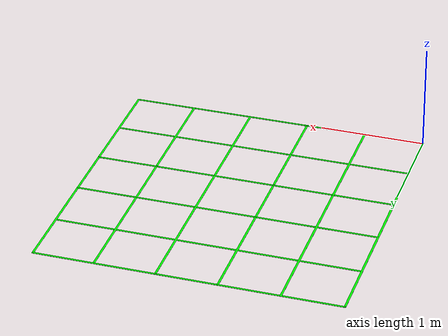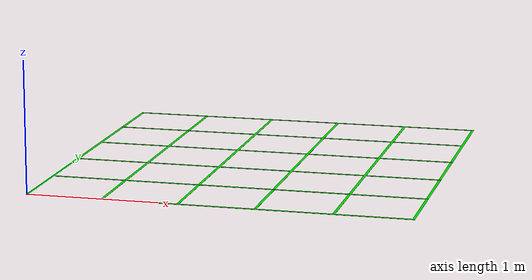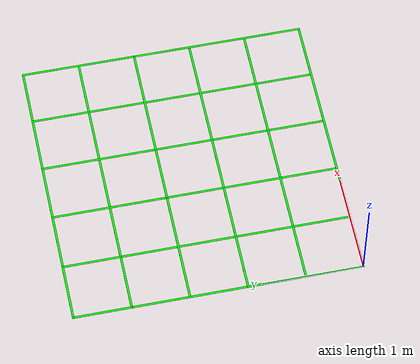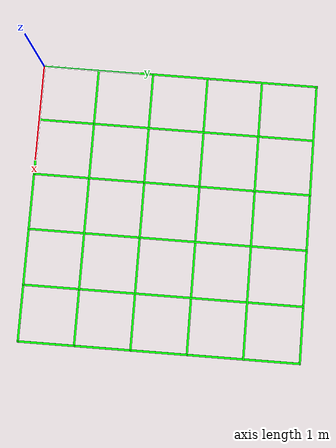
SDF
<sdf version="1.5">
 <world name="default">
  <include><uri>model://5x5Grid</uri><pose>1.4325 1.4325 0 0 0 0</pose></include>
  <include><uri>model://sun</uri></include>
  <scene>
   <ambient>0.8 0.8 0.8 1</ambient>
   <background>0.8 0.9 1 1</background>
   <shadows>false</shadows>
   <grid>false</grid>
   <origin_visual>false</origin_visual>
  </scene>
  <physics name="default_physics" default="0" type="ode">
   <gravity>0 0 -9.8066</gravity>
   <ode>
    <solver>
     <type>quick</type>
     <iters>10</iters>
     <sor>1.3</sor>
     <use_dynamic_moi_rescaling>0</use_dynamic_moi_rescaling>
    </solver>
    <constraints>
     <cfm>0</cfm>
     <erp>0.2</erp>
     <contact_max_correcting_vel>100</contact_max_correcting_vel>
     <contact_surface_layer>0.001</contact_surface_layer>
    </constraints>
   </ode>
   <max_step_size>0.004</max_step_size>
   <real_time_factor>1</real_time_factor>
   <real_time_update_rate>250</real_time_update_rate>
   <magnetic_field>6.0e-6 2.3e-5 -4.2e-5</magnetic_field>
  </physics>
 </world>
</sdf>

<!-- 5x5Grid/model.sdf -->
<sdf version='1.7'>
  <model name='5x5Grid'>
    <pose>1.4325 1.4325 0 0 -0 0</pose>
    <link name='Wall_0'>
      <collision name='Wall_0_Collision'>
        <geometry>
          <box>
            <size>2.885 0.02 0.001</size>
          </box>
        </geometry>
        <pose>0 0 0.0005 0 -0 0</pose>
      </collision>
      <visual name='Wall_0_Visual'>
        <pose>0 0 0.0005 0 -0 0</pose>
        <geometry>
          <box>
            <size>2.885 0.02 0.001</size>
          </box>
        </geometry>
        <material>
          <script>
            <uri>file://media/materials/scripts/gazebo.material</uri>
            <name>Gazebo/Grey</name>
          </script>
          <ambient>0 1 0 1</ambient>
        </material>
        <meta>
          <layer>0</layer>
        </meta>
      </visual>
      <pose>-1.4325 0 0 0 -0 -1.5708</pose>
    </link>
    <link name='Wall_1'>
      <collision name='Wall_1_Collision'>
        <geometry>
          <box>
            <size>2.885 0.02 0.001</size>
          </box>
        </geometry>
        <pose>0 0 0.0005 0 -0 0</pose>
      </collision>
      <visual name='Wall_1_Visual'>
        <pose>0 0 0.0005 0 -0 0</pose>
        <geometry>
          <box>
            <size>2.885 0.02 0.001</size>
          </box>
        </geometry>
        <material>
          <script>
            <uri>file://media/materials/scripts/gazebo.material</uri>
            <name>Gazebo/Grey</name>
          </script>
          <ambient>0 1 0 1</ambient>
        </material>
        <meta>
          <layer>0</layer>
        </meta>
      </visual>
      <pose>0 -1.4325 0 0 -0 0</pose>
    </link>
    <link name='Wall_11'>
      <collision name='Wall_11_Collision'>
        <geometry>
          <box>
            <size>2.885 0.02 0.001</size>
          </box>
        </geometry>
        <pose>0 0 0.0005 0 -0 0</pose>
      </collision>
      <visual name='Wall_11_Visual'>
        <pose>0 0 0.0005 0 -0 0</pose>
        <geometry>
          <box>
            <size>2.885 0.02 0.001</size>
          </box>
        </geometry>
        <material>
          <script>
            <uri>file://media/materials/scripts/gazebo.material</uri>
            <name>Gazebo/Grey</name>
          </script>
          <ambient>0 1 0 1</ambient>
        </material>
        <meta>
          <layer>0</layer>
        </meta>
      </visual>
      <pose>0 0.8595 0 0 -0 0</pose>
    </link>
    <link name='Wall_13'>
      <collision name='Wall_13_Collision'>
        <geometry>
          <box>
            <size>2.885 0.02 0.001</size>
          </box>
        </geometry>
        <pose>0 0 0.0005 0 -0 0</pose>
      </collision>
      <visual name='Wall_13_Visual'>
        <pose>0 0 0.0005 0 -0 0</pose>
        <geometry>
          <box>
            <size>2.885 0.02 0.001</size>
          </box>
        </geometry>
        <material>
          <script>
            <uri>file://media/materials/scripts/gazebo.material</uri>
            <name>Gazebo/Grey</name>
          </script>
          <ambient>0 1 0 1</ambient>
        </material>
        <meta>
          <layer>0</layer>
        </meta>
      </visual>
      <pose>-0.8595 0 0 0 -0 -1.5708</pose>
    </link>
    <link name='Wall_17'>
      <collision name='Wall_17_Collision'>
        <geometry>
          <box>
            <size>2.885 0.02 0.001</size>
          </box>
        </geometry>
        <pose>0 0 0.0005 0 -0 0</pose>
      </collision>
      <visual name='Wall_17_Visual'>
        <pose>0 0 0.0005 0 -0 0</pose>
        <geometry>
          <box>
            <size>2.885 0.02 0.001</size>
          </box>
        </geometry>
        <material>
          <script>
            <uri>file://media/materials/scripts/gazebo.material</uri>
            <name>Gazebo/Grey</name>
          </script>
          <ambient>0 1 0 1</ambient>
        </material>
        <meta>
          <layer>0</layer>
        </meta>
      </visual>
      <pose>-0.2865 0 0 0 -0 -1.5708</pose>
    </link>
    <link name='Wall_19'>
      <collision name='Wall_19_Collision'>
        <geometry>
          <box>
            <size>2.885 0.02 0.001</size>
          </box>
        </geometry>
        <pose>0 0 0.0005 0 -0 0</pose>
      </collision>
      <visual name='Wall_19_Visual'>
        <pose>0 0 0.0005 0 -0 0</pose>
        <geometry>
          <box>
            <size>2.885 0.02 0.001</size>
          </box>
        </geometry>
        <material>
          <script>
            <uri>file://media/materials/scripts/gazebo.material</uri>
            <name>Gazebo/Grey</name>
          </script>
          <ambient>0 1 0 1</ambient>
        </material>
        <meta>
          <layer>0</layer>
        </meta>
      </visual>
      <pose>0.2865 0 0 0 -0 -1.5708</pose>
    </link>
    <link name='Wall_2'>
      <collision name='Wall_2_Collision'>
        <geometry>
          <box>
            <size>2.885 0.02 0.001</size>
          </box>
        </geometry>
        <pose>0 0 0.0005 0 -0 0</pose>
      </collision>
      <visual name='Wall_2_Visual'>
        <pose>0 0 0.0005 0 -0 0</pose>
        <geometry>
          <box>
            <size>2.885 0.02 0.001</size>
          </box>
        </geometry>
        <material>
          <script>
            <uri>file://media/materials/scripts/gazebo.material</uri>
            <name>Gazebo/Grey</name>
          </script>
          <ambient>0 1 0 1</ambient>
        </material>
        <meta>
          <layer>0</layer>
        </meta>
      </visual>
      <pose>1.4325 0 0 0 -0 1.5708</pose>
    </link>
    <link name='Wall_21'>
      <collision name='Wall_21_Collision'>
        <geometry>
          <box>
            <size>2.885 0.02 0.001</size>
          </box>
        </geometry>
        <pose>0 0 0.0005 0 -0 0</pose>
      </collision>
      <visual name='Wall_21_Visual'>
        <pose>0 0 0.0005 0 -0 0</pose>
        <geometry>
          <box>
            <size>2.885 0.02 0.001</size>
          </box>
        </geometry>
        <material>
          <script>
            <uri>file://media/materials/scripts/gazebo.material</uri>
            <name>Gazebo/Grey</name>
          </script>
          <ambient>0 1 0 1</ambient>
        </material>
        <meta>
          <layer>0</layer>
        </meta>
      </visual>
      <pose>0.8595 0 0 0 -0 -1.5708</pose>
    </link>
    <link name='Wall_3'>
      <collision name='Wall_3_Collision'>
        <geometry>
          <box>
            <size>2.885 0.02 0.001</size>
          </box>
        </geometry>
        <pose>0 0 0.0005 0 -0 0</pose>
      </collision>
      <visual name='Wall_3_Visual'>
        <pose>0 0 0.0005 0 -0 0</pose>
        <geometry>
          <box>
            <size>2.885 0.02 0.001</size>
          </box>
        </geometry>
        <material>
          <script>
            <uri>file://media/materials/scripts/gazebo.material</uri>
            <name>Gazebo/Grey</name>
          </script>
          <ambient>0 1 0 1</ambient>
        </material>
        <meta>
          <layer>0</layer>
        </meta>
      </visual>
      <pose>0 1.4325 0 0 -0 3.14159</pose>
    </link>
    <link name='Wall_5'>
      <collision name='Wall_5_Collision'>
        <geometry>
          <box>
            <size>2.88507 0.02 0.001</size>
          </box>
        </geometry>
        <pose>0 0 0.0005 0 -0 0</pose>
      </collision>
      <visual name='Wall_5_Visual'>
        <pose>0 0 0.0005 0 -0 0</pose>
        <geometry>
          <box>
            <size>2.88507 0.02 0.001</size>
          </box>
        </geometry>
        <material>
          <script>
            <uri>file://media/materials/scripts/gazebo.material</uri>
            <name>Gazebo/Grey</name>
          </script>
          <ambient>0 1 0 1</ambient>
        </material>
        <meta>
          <layer>0</layer>
        </meta>
      </visual>
      <pose>0 -0.8595 0 0 -0 0</pose>
    </link>
    <link name='Wall_7'>
      <collision name='Wall_7_Collision'>
        <geometry>
          <box>
            <size>2.885 0.02 0.001</size>
          </box>
        </geometry>
        <pose>0 0 0.0005 0 -0 0</pose>
      </collision>
      <visual name='Wall_7_Visual'>
        <pose>0 0 0.0005 0 -0 0</pose>
        <geometry>
          <box>
            <size>2.885 0.02 0.001</size>
          </box>
        </geometry>
        <material>
          <script>
            <uri>file://media/materials/scripts/gazebo.material</uri>
            <name>Gazebo/Grey</name>
          </script>
          <ambient>0 1 0 1</ambient>
        </material>
        <meta>
          <layer>0</layer>
        </meta>
      </visual>
      <pose>0 -0.2865 0 0 -0 0</pose>
    </link>
    <link name='Wall_9'>
      <collision name='Wall_9_Collision'>
        <geometry>
          <box>
            <size>2.885 0.02 0.001</size>
          </box>
        </geometry>
        <pose>0 0 0.0005 0 -0 0</pose>
      </collision>
      <visual name='Wall_9_Visual'>
        <pose>0 0 0.0005 0 -0 0</pose>
        <geometry>
          <box>
            <size>2.885 0.02 0.001</size>
          </box>
        </geometry>
        <material>
          <script>
            <uri>file://media/materials/scripts/gazebo.material</uri>
            <name>Gazebo/Grey</name>
          </script>
          <ambient>0 1 0 1</ambient>
        </material>
        <meta>
          <layer>0</layer>
        </meta>
      </visual>
      <pose>0 0.2865 0 0 -0 0</pose>
    </link>
    <static>1</static>
  </model>
</sdf>
